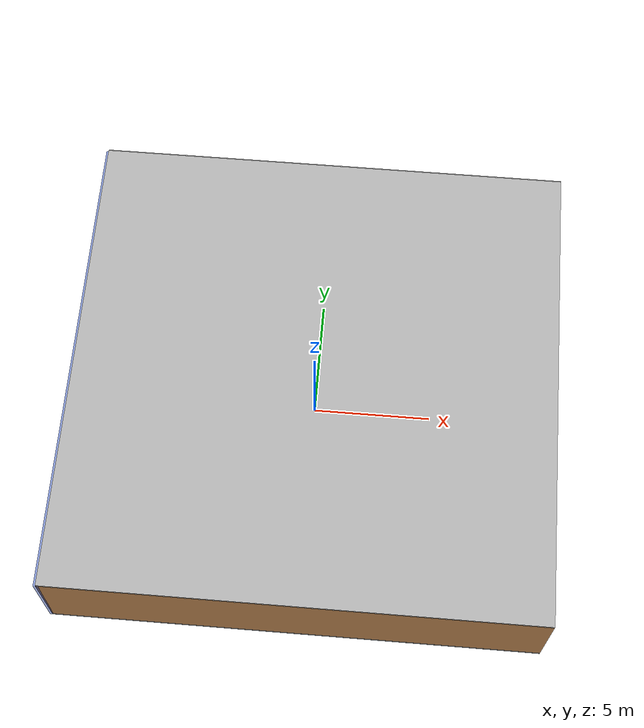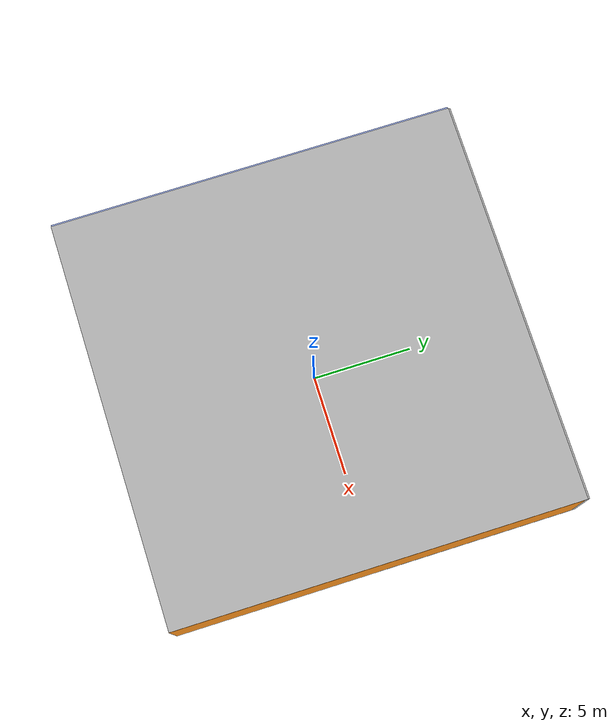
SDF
<sdf version="1.4">
 <world name="default">
  <physics type="ode">
   <max_step_size>0.001</max_step_size>
   <real_time_factor>1</real_time_factor>
   <real_time_update_rate>1000</real_time_update_rate>
   <gravity>0 0 -9.8</gravity>
  </physics>
  <scene><ambient>0.4 0.4 0.4 1</ambient><background>0.7 0.7 0.7 1</background><shadows>1</shadows></scene>
  <model name="Surrounding">
   <static>1</static>
   <link name="Ceiling">
    <collision name="Ceiling_Collision"><geometry><box><size>20 20 0.1</size></box></geometry></collision>
    <visual name="Ceiling_Visual">
     <geometry><box><size>20 20 0.1</size></box></geometry>
     <material>
      <script><uri>file://media/materials/scripts/gazebo.material</uri><name>Gazebo/CloudySky</name></script>
     </material>
    </visual>
    <pose>0 0 4.05 0 0 0</pose>
   </link>
   <link name="Wall_South">
    <collision name="Wall_South_Collision">
     <geometry><box><size>20 0 4</size></box></geometry>
     <pose>0 0 2 0 -0 0</pose>
    </collision>
    <visual name="Wall_South_Visual">
     <pose>0 0 2 0 -0 0</pose>
     <geometry><box><size>20 0 4</size></box></geometry>
     <material>
      <script><uri>file://media/materials/scripts/gazebo.material</uri><name>Gazebo/WoodPallet</name></script>
     </material>
    </visual>
    <velocity_decay><linear>0</linear><angular>0</angular></velocity_decay>
    <pose>0 -10 0 0 -0 0</pose>
   </link>
   <link name="Wall_East">
    <collision name="Wall_21_Collision">
     <geometry><box><size>20 0 4</size></box></geometry>
     <pose>0 0 2 0 -0 0</pose>
    </collision>
    <visual name="Wall_21_Visual">
     <pose>0 0 2 0 -0 0</pose>
     <geometry><box><size>20 0 4</size></box></geometry>
     <material>
      <script><uri>file://media/materials/scripts/gazebo.material</uri><name>Gazebo/Orange</name></script>
     </material>
    </visual>
    <velocity_decay><linear>0</linear><angular>0</angular></velocity_decay>
    <pose>10 0 0 0 -0 1.5708</pose>
   </link>
   <link name="Wall_North">
    <collision name="Wall_22_Collision">
     <geometry><box><size>20 0.2 4</size></box></geometry>
     <pose>0 0 2 0 -0 0</pose>
    </collision>
    <visual name="Wall_22_Visual">
     <pose>0 0 2 0 -0 0</pose>
     <geometry><box><size>20 0.2 4</size></box></geometry>
     <material>
      <script><uri>file://media/materials/scripts/gazebo.material</uri><name>Gazebo/CloudySky</name></script>
     </material>
    </visual>
    <velocity_decay><linear>0</linear><angular>0</angular></velocity_decay>
    <pose>0 10 0 0 -0 0</pose>
   </link>
   <link name="Wall_West">
    <collision name="Wall_23_Collision">
     <geometry><box><size>20 0.2 4</size></box></geometry>
     <pose>0 0 2 0 -0 0</pose>
    </collision>
    <visual name="Wall_23_Visual">
     <pose>0 0 2 0 -0 0</pose>
     <geometry><box><size>20 0.2 4</size></box></geometry>
     <material>
      <script><uri>file://media/materials/scripts/gazebo.material</uri><name>Gazebo/BlueTransparent</name></script>
     </material>
    </visual>
    <velocity_decay><linear>0</linear><angular>0</angular></velocity_decay>
    <pose>-10 0 0 0 0 -1.5708</pose>
   </link>
   <link name="Ground_link">
    <collision name="collision">
     <pose>0 0 .05 0 -0 0</pose>
     <geometry><box><size>20 20 0.1</size></box></geometry>
    </collision>
    <visual name="visual">
     <pose>0 0 .05 0 -0 0</pose>
     <geometry><box><size>20 20 0.1</size></box></geometry>
     <material>
      <script><uri>file://media/materials/scripts/gazebo.material</uri><name>Gazebo/GreyGradientSky</name></script>
     </material>
    </visual>
   </link>
   <static>1</static>
  </model>
  <spherical_coordinates>
   <surface_model>EARTH_WGS84</surface_model>
   <latitude_deg>0</latitude_deg>
   <longitude_deg>0</longitude_deg>
   <elevation>0</elevation>
   <heading_deg>0</heading_deg>
  </spherical_coordinates>
  <light name="lightball_0" type="diffuse">
   <diffuse>0.8 0.8 0.8 1</diffuse>
   <specular>0.2 0.2 0.2 1</specular>
   <attenuation>
    <range>100</range>
    <constant>0.7</constant>
    <linear>0.01</linear>
    <quadratic>0.001</quadratic>
   </attenuation>
   <direction>-0.5 0.1 -0.9</direction>
   <pose>-7.22856515495 -5.66394038023 1.65769400177 0 0 0</pose>
  </light>
  <light name="lightball_1" type="diffuse">
   <diffuse>0.8 0.8 0.8 1</diffuse>
   <specular>0.2 0.2 0.2 1</specular>
   <attenuation>
    <range>100</range>
    <constant>0.7</constant>
    <linear>0.01</linear>
    <quadratic>0.001</quadratic>
   </attenuation>
   <direction>-0.5 0.1 -0.9</direction>
   <pose>8.72162451739 -2.61254450175 0.533593026458 0 0 0</pose>
  </light>
  <light name="lightball_2" type="diffuse">
   <diffuse>0.8 0.8 0.8 1</diffuse>
   <specular>0.2 0.2 0.2 1</specular>
   <attenuation>
    <range>100</range>
    <constant>0.7</constant>
    <linear>0.01</linear>
    <quadratic>0.001</quadratic>
   </attenuation>
   <direction>-0.5 0.1 -0.9</direction>
   <pose>-0.701584676201 8.53841630568 3.88787991705 0 0 0</pose>
  </light>
  <light name="lightball_3" type="diffuse">
   <diffuse>0.8 0.8 0.8 1</diffuse>
   <specular>0.2 0.2 0.2 1</specular>
   <attenuation>
    <range>100</range>
    <constant>0.7</constant>
    <linear>0.01</linear>
    <quadratic>0.001</quadratic>
   </attenuation>
   <direction>-0.5 0.1 -0.9</direction>
   <pose>3.19021780836 -2.06671796955 2.91809612628 0 0 0</pose>
  </light>
  <light name="lightball_4" type="diffuse">
   <diffuse>0.8 0.8 0.8 1</diffuse>
   <specular>0.2 0.2 0.2 1</specular>
   <attenuation>
    <range>100</range>
    <constant>0.7</constant>
    <linear>0.01</linear>
    <quadratic>0.001</quadratic>
   </attenuation>
   <direction>-0.5 0.1 -0.9</direction>
   <pose>-8.03766583326 -7.76563872444 3.02149466071 0 0 0</pose>
  </light>
  <light name="lightball_5" type="diffuse">
   <diffuse>0.8 0.8 0.8 1</diffuse>
   <specular>0.2 0.2 0.2 1</specular>
   <attenuation>
    <range>100</range>
    <constant>0.7</constant>
    <linear>0.01</linear>
    <quadratic>0.001</quadratic>
   </attenuation>
   <direction>-0.5 0.1 -0.9</direction>
   <pose>-6.40776840916 2.50793296738 1.61570817103 0 0 0</pose>
  </light>
  <light name="lightball_6" type="diffuse">
   <diffuse>0.8 0.8 0.8 1</diffuse>
   <specular>0.2 0.2 0.2 1</specular>
   <attenuation>
    <range>100</range>
    <constant>0.7</constant>
    <linear>0.01</linear>
    <quadratic>0.001</quadratic>
   </attenuation>
   <direction>-0.5 0.1 -0.9</direction>
   <pose>-6.51877552469 -3.1507918504 1.74044323583 0 0 0</pose>
  </light>
  <include>
   <uri>model://textured_shapes</uri>
   <pose>-4.14579564953 -4.91810228685 0 0 0 2.79912049182</pose>
  </include>
  <include>
   <uri>model://robocup_3Dsim_goal</uri>
   <pose>1.98461029727 1.53558291984 0 0 0 1.76354384046</pose>
  </include>
  <include>
   <uri>model://textured_shapes</uri>
   <pose>0.459633764023 4.28772506844 0 0 0 2.49443823439</pose>
  </include>
  <include>
   <uri>model://textured_shapes</uri>
   <pose>6.65942811877 -7.62380155162 0 0 0 1.98001066516</pose>
  </include>
  <include>
   <uri>model://construction_cone</uri>
   <pose>8.0986379477 -0.933545034227 0 0 0 2.84686463844</pose>
  </include>
 </world>
</sdf>

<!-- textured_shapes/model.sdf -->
<sdf version="1.6">
  <model name="textured_shapes">
    <pose>0 0 0.5 0 0 0</pose>
    <link name="box">
      <pose>0 -1.5 0 0 0 0</pose>
      <collision name="collision">
        <geometry>
          <box>
            <size>1 1 1</size>
          </box>
        </geometry>
      </collision>
      <visual name="visual">
        <geometry>
          <box>
            <size>1 1 1</size>
          </box>
        </geometry>
        <material>
          <script>
            <uri>model://../model_source/models/textured_shapes/materials/scripts</uri>
            <uri>model://../model_source/models/textured_shapes/materials/textures</uri>
            <name>TexturedShape/Squares</name>
          </script>
        </material>
      </visual>
    </link>
    <link name="sphere">
      <collision name="collision">
        <geometry>
          <sphere>
            <radius>0.5</radius>
          </sphere>
        </geometry>
      </collision>
      <visual name="visual">
        <geometry>
          <sphere>
            <radius>0.5</radius>
          </sphere>
        </geometry>
        <material>
          <script>
            <uri>model://../model_source/models/textured_shapes/materials/scripts</uri>
            <uri>model://../model_source/models/textured_shapes/materials/textures</uri>
            <name>TexturedShape/Squares</name>
          </script>
        </material>
      </visual>
    </link>
    <link name="cylinder">
      <pose>0 1.5 0 0 0 0</pose>
      <collision name="collision">
        <geometry>
          <cylinder>
            <radius>0.5</radius>
            <length>1</length>
          </cylinder>
        </geometry>
      </collision>
      <visual name="visual">
        <geometry>
          <cylinder>
            <radius>0.5</radius>
            <length>1</length>
          </cylinder>
        </geometry>
        <material>
          <script>
            <uri>model://../model_source/models/textured_shapes/materials/scripts</uri>
            <uri>model://../model_source/models/textured_shapes/materials/textures</uri>
            <name>TexturedShape/Squares</name>
          </script>
        </material>
      </visual>
    </link>
  </model>
</sdf>

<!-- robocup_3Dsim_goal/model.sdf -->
<sdf version="1.5">
  <model name="robocup_3d_goal">
    <static>true</static>
    <link name="left_post">
      <pose>0 1.05 0.45 0 0 0</pose>
      <collision name="collision">
        <geometry>
          <cylinder>
            <radius>0.05</radius>
            <length>0.9</length>
          </cylinder>
        </geometry>
      </collision>
      <visual name="visual">
        <geometry>
          <cylinder>
            <radius>0.05</radius>
            <length>0.9</length>
          </cylinder>
        </geometry>
        <material>
          <script>
            <uri>file://media/materials/scripts/gazebo.material</uri>
            <name>Gazebo/ZincYellow</name>
          </script>
        </material>
      </visual>
    </link>
    <link name="left_support_horiz_lower">
      <pose>0.30 1.05 0.01 0 0 0</pose>
      <collision name="collision">
        <geometry>
          <box>
            <size>0.50 0.02 0.02</size>
          </box>
        </geometry>
      </collision>
      <visual name="visual">
        <geometry>
          <box>
            <size>0.50 0.02 0.02</size>
          </box>
        </geometry>
        <material>
          <script>
            <uri>file://media/materials/scripts/gazebo.material</uri>
            <name>Gazebo/White</name>
          </script>
        </material>
      </visual>
    </link>
    <link name="left_support_horiz_upper">
      <pose>0.30 1.05 0.79 0 0 0</pose>
      <collision name="collision">
        <geometry>
          <box>
            <size>0.50 0.02 0.02</size>
          </box>
        </geometry>
      </collision>
      <visual name="visual">
        <geometry>
          <box>
            <size>0.50 0.02 0.02</size>
          </box>
        </geometry>
        <material>
          <script>
            <uri>file://media/materials/scripts/gazebo.material</uri>
            <name>Gazebo/White</name>
          </script>
        </material>
      </visual>
    </link>
    <link name="left_support_vertical">
      <pose>0.56 1.05 0.4 0 1.5708 0</pose>
      <collision name="collision">
        <geometry>
          <box>
            <size>0.80 0.02 0.02</size>
          </box>
        </geometry>
      </collision>
      <visual name="visual">
        <geometry>
          <box>
            <size>0.80 0.02 0.02</size>
          </box>
        </geometry>
        <material>
          <script>
            <uri>file://media/materials/scripts/gazebo.material</uri>
            <name>Gazebo/White</name>
          </script>
        </material>
      </visual>
    </link>
    <link name="right_support_horiz_lower">
      <pose>0.30 -1.05 0.01 0 0 0</pose>
      <collision name="collision">
        <geometry>
          <box>
            <size>0.50 0.02 0.02</size>
          </box>
        </geometry>
      </collision>
      <visual name="visual">
        <geometry>
          <box>
            <size>0.50 0.02 0.02</size>
          </box>
        </geometry>
        <material>
          <script>
            <uri>file://media/materials/scripts/gazebo.material</uri>
            <name>Gazebo/White</name>
          </script>
        </material>
      </visual>
    </link>
    <link name="right_support_horiz_upper">
      <pose>0.30 -1.05 0.79 0 0 0</pose>
      <collision name="collision">
        <geometry>
          <box>
            <size>0.50 0.02 0.02</size>
          </box>
        </geometry>
      </collision>
      <visual name="visual">
        <geometry>
          <box>
            <size>0.50 0.02 0.02</size>
          </box>
        </geometry>
        <material>
          <script>
            <uri>file://media/materials/scripts/gazebo.material</uri>
            <name>Gazebo/White</name>
          </script>
        </material>
      </visual>
    </link>
    <link name="right_support_vertical">
      <pose>0.56 -1.05 0.4 0 1.5708 0</pose>
      <collision name="collision">
        <geometry>
          <box>
            <size>0.80 0.02 0.02</size>
          </box>
        </geometry>
      </collision>
      <visual name="visual">
        <geometry>
          <box>
            <size>0.80 0.02 0.02</size>
          </box>
        </geometry>
        <material>
          <script>
            <uri>file://media/materials/scripts/gazebo.material</uri>
            <name>Gazebo/White</name>
          </script>
        </material>
      </visual>
    </link>
    <link name="center_support_horiz_lower">
      <pose>0.56 0 0.01 0 1.5708 0</pose>
      <collision name="collision">
        <geometry>
          <box>
            <size>0.02 2.08 0.02</size>
          </box>
        </geometry>
      </collision>
      <visual name="visual">
        <geometry>
          <box>
            <size>0.02 2.08 0.02</size>
          </box>
        </geometry>
        <material>
          <script>
            <uri>file://media/materials/scripts/gazebo.material</uri>
            <name>Gazebo/White</name>
          </script>
        </material>
      </visual>
    </link>
    <link name="center_support_horiz_upper">
      <pose>0.56 0 0.79 0 1.5708 0</pose>
      <collision name="collision">
        <geometry>
          <box>
            <size>0.02 2.08 0.02</size>
          </box>
        </geometry>
      </collision>
      <visual name="visual">
        <geometry>
          <box>
            <size>0.02 2.08 0.02</size>
          </box>
        </geometry>
        <material>
          <script>
            <uri>file://media/materials/scripts/gazebo.material</uri>
            <name>Gazebo/White</name>
          </script>
        </material>
      </visual>
    </link>
    <link name="right_post">
      <pose>0 -1.05 0.45 0 0 0</pose>
      <collision name="collision">
        <geometry>
          <cylinder>
            <radius>0.05</radius>
            <length>0.9</length>
          </cylinder>
        </geometry>
      </collision>
      <visual name="visual">
        <geometry>
          <cylinder>
            <radius>0.05</radius>
            <length>0.9</length>
          </cylinder>
        </geometry>
        <material>
          <script>
            <uri>file://media/materials/scripts/gazebo.material</uri>
            <name>Gazebo/ZincYellow</name>
          </script>
        </material>
      </visual>
    </link>
    <link name="crossbar">
      <pose>0 0 0.85 1.57 1.57 0</pose>
      <collision name="collision">
        <geometry>
          <cylinder>
            <radius>0.05</radius>
            <length>2.0</length>
          </cylinder>
        </geometry>
      </collision>
      <visual name="visual">
        <geometry>
          <cylinder>
            <radius>0.05</radius>
            <length>2.0</length>
          </cylinder>
        </geometry>
        <material>
          <script>
            <uri>file://media/materials/scripts/gazebo.material</uri>
            <name>Gazebo/ZincYellow</name>
          </script>
        </material>
      </visual>
    </link>
    <link name="center_net">
      <pose>0.56 0 0.40 0 0 0</pose>
      <collision name="collision">
        <geometry>
          <box>
            <size>0.01 2.1 0.80</size>
          </box>
        </geometry>
      </collision>
      <visual name="visual">
        <geometry>
          <box>
            <size>0.01 2.1 0.80</size>
          </box>
        </geometry>
        <material>
          <script>
            <uri>model://../model_source/models/robocup09_spl_field/materials/scripts/</uri>
            <uri>model://../model_source/models/robocup09_spl_field/materials/textures/</uri>
            <name>RoboCup/Net</name>
          </script>
        </material>
      </visual>
    </link>
    <link name="left_net">
      <pose>0.30 1.05 0.40 0 0 0</pose>
      <collision name="collision">
        <geometry>
          <box>
            <size>0.50 0.01 0.76</size>
          </box>
        </geometry>
      </collision>
      <visual name="visual">
        <geometry>
          <box>
            <size>0.50 0.01 0.76</size>
          </box>
        </geometry>
        <material>
          <script>
            <uri>model://../model_source/models/robocup09_spl_field/materials/scripts/</uri>
            <uri>model://../model_source/models/robocup09_spl_field/materials/textures/</uri>
            <name>RoboCup/Net</name>
          </script>
        </material>
      </visual>
    </link>
    <link name="right_net">
      <pose>0.30 -1.05 0.40 0 0 0</pose>
      <collision name="collision">
        <geometry>
          <box>
            <size>0.50 0.01 0.76</size>
          </box>
        </geometry>
      </collision>
      <visual name="visual">
        <geometry>
          <box>
            <size>0.50 0.01 0.76</size>
          </box>
        </geometry>
        <material>
          <script>
            <uri>model://../model_source/models/robocup09_spl_field/materials/scripts/</uri>
            <uri>model://../model_source/models/robocup09_spl_field/materials/textures/</uri>
            <name>RoboCup/Net</name>
          </script>
        </material>
      </visual>
    </link>
  </model>
</sdf>

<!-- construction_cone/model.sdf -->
<sdf version="1.5">
  <model name="Construction Cone">
    <link name="link">
      <collision name="collision">
        <geometry>
          <mesh>
            <scale>10 10 10</scale>
            <uri>file://isr-testbed/construction_cone/meshes/construction_cone.dae</uri>
          </mesh>
        </geometry>
      </collision>
      <visual name="visual">
        <geometry>
          <mesh>
            <scale>10 10 10</scale>
            <uri>file://isr-testbed/construction_cone/meshes/construction_cone.dae</uri>
          </mesh>
        </geometry>
      </visual>
    </link>
  </model>
</sdf>
